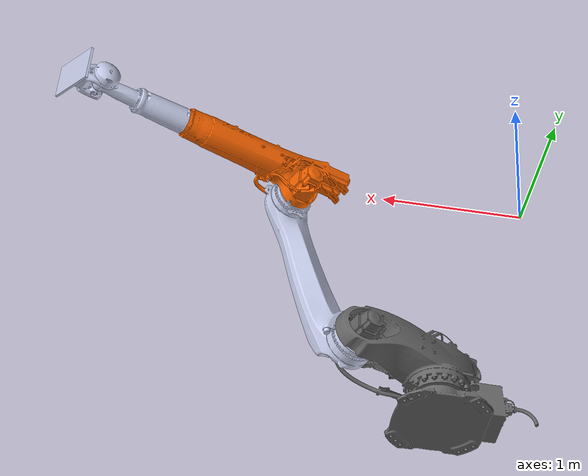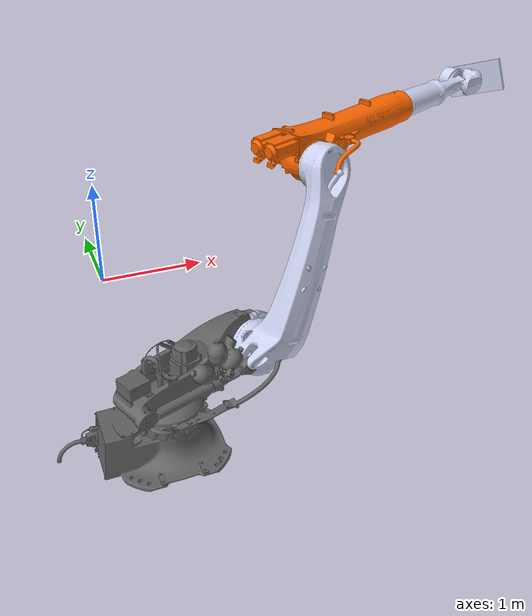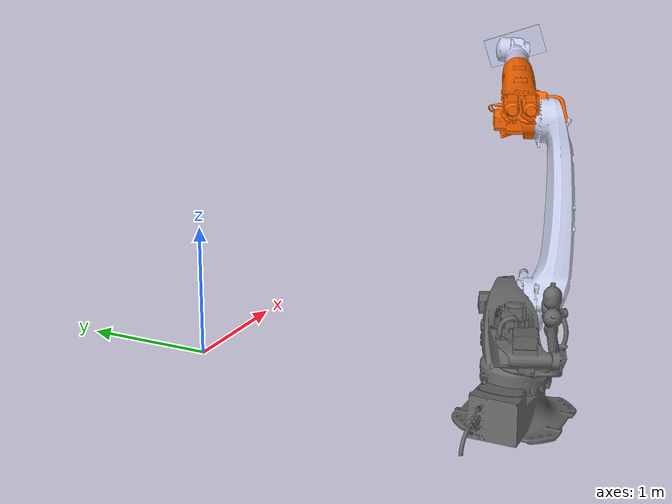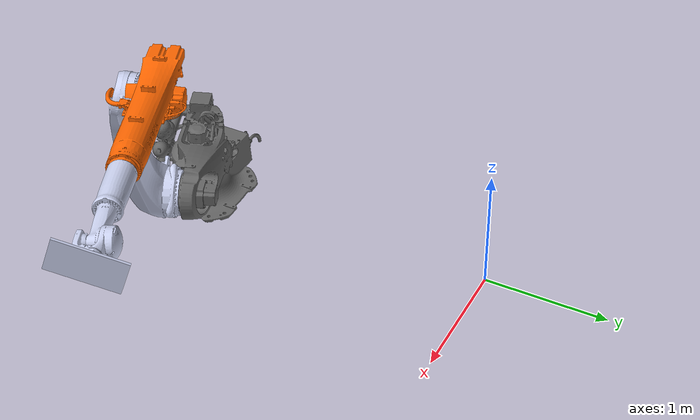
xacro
<?xml version="1.0"?>
<robot xmlns:xacro="http://www.ros.org/wiki/xacro" name="KUKA_Robots">

    <!-- undo these when needed -->

    <!-- Root link -->
    <link name="world"/>

    <!-- Xacro imports -->
    <xacro:include filename="$(find robot_urdf)/urdf/KUKA_robot_macro.xacro" />

    <!-- robot1 -->
    <xacro:KUKA_robot
        name="KUKA_robot"
        prefix="robot1_"
        parent="world">
        <origin xyz="0 -2.5 0" rpy="-1.5708 0 0" />
    </xacro:KUKA_robot>

    <!-- robot2 -->
</robot>

<!-- initial_positions_file="$(arg right_initial_positions_file)" -->
<!-- initial_positions_file="$(arg robot1_initial_positions_file)"> -->

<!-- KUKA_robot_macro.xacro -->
<robot xmlns:xacro="http://www.ros.org/wiki/xacro">

    <xacro:macro name="KUKA_robot" params="name prefix parent *origin">

        <!-- ros2 controls config here -->
        <xacro:include filename="$(find robot_urdf)/config/KUKA_robot.ros2_control.xacro" />
        <xacro:KUKA_robot_ros2_control name="${name}" prefix="${prefix}"/>

        <!-- Gazebo control config goes here -->
        <gazebo>
          <plugin filename="libgz_ros2_control-system.so" name="gz_ros2_control::GazeboSimROS2ControlPlugin">
            <parameters>$(find robot_urdf)/config/KUKA_controller.yaml</parameters>
            <ros>
              <remapping>/controller_manager/robot_description:=/robot_description</remapping>
            </ros>
          </plugin>
        </gazebo>

      <joint name="${prefix}jnt_${parent}_to_base_link" type="fixed">

        <xacro:insert_block name="origin"/>

        <!-- origin xyz="0 0 0" rpy="-1.5708 0 0" / -->

        <parent link="${parent}" />

        <child link="${prefix}base_link" />

      </joint>

      <link name="${prefix}base_link">

        <!-- inertial -->
        <inertial>
          <origin xyz="-0.11981 0.00095475 0.10543" rpy="0 0 0" />
          <mass value="69.419" />
          <inertia
            ixx="1.5959"
            ixy="0.0085722"
            ixz="0.36667"
            iyy="3.5014"
            iyz="-0.0021187"
            izz="4.272" />
        </inertial>

        <!-- visual -->
        <visual>
          <origin xyz="0 0 0" rpy="0 0 0" />
          <geometry>
            <mesh filename="package://robot_urdf/meshes/base_link.STL" />
          </geometry>
          <material name="">
            <color rgba="0.4 0.4 0.4 1" />
          </material>
        </visual>

        <!-- collision -->
        <collision>
          <origin xyz="0 0 0" rpy="0 0 0" />
          <geometry>
            <mesh filename="package://robot_urdf/meshes/base_link.STL" />
          </geometry>
        </collision>

      </link>

      <link name="${prefix}Ax1">
        <inertial>

          <origin xyz="0.21322 0.0074862 0.26077" rpy="0 0 0" />

          <mass value="112.66" />

          <inertia
            ixx="2.9338"
            ixy="-0.80384"
            ixz="-1.3414"
            iyy="9.9259"
            iyz="-0.19044"
            izz="9.4935" />

        </inertial>

        <visual>
          <origin xyz="0 0 0" rpy="0 0 0" />
          <geometry>
            <mesh filename="package://robot_urdf/meshes/Ax1.STL" />
          </geometry>
          <material name="">
            <color rgba="0.4 0.4 0.4 1" />
          </material>
        </visual>

        <collision>
          <origin xyz="0 0 0" rpy="0 0 0" />
          <geometry>
            <mesh filename="package://robot_urdf/meshes/Ax1.STL" />
          </geometry>
        </collision>

      </link>

      <joint name="${prefix}jnt_Base_to_Ax1"
        type="revolute">
        <origin
          xyz="0 -0.21559 0"
          rpy="1.5708 -0.34738 0" />
        <parent
          link="${prefix}base_link" />
        <child
          link="${prefix}Ax1" />
        <axis
          xyz="0 0 1" />
        <limit
          lower="-1.04719755"
          upper="+1.04719755"
          effort="-1"
          velocity="1" />
      </joint>

      <link name="${prefix}Ax2">
        <inertial>
          <origin
            xyz="-0.136832656859279 0.0144078767700652 0.32155414214809"
            rpy="0 0 0" />
          <mass
            value="276.998100922925" />
          <inertia
            ixx="318.852709801833"
            ixy="0.776560972222151"
            ixz="-176.545924815262"
            iyy="440.992384902426"
            iyz="2.83426651703951"
            izz="130.06696817012" />
        </inertial>
        <visual>
          <origin
            xyz="0 0 0"
            rpy="0 0 0" />
          <geometry>
            <mesh
              filename="package://robot_urdf/meshes/Ax2.STL" />
          </geometry>
          <material
            name="">
            <color
              rgba="0.792156862745098 0.819607843137255 0.933333333333333 1" />
          </material>
        </visual>
        <collision>
          <origin
            xyz="0 0 0"
            rpy="0 0 0" />
          <geometry>
            <mesh
              filename="package://robot_urdf/meshes/Ax2.STL" />
          </geometry>
        </collision>
      </link>

      <joint name="${prefix}jnt_Ax1_to_Ax2"
        type="revolute">
        <origin
          xyz="0.73 0 0.32441"
          rpy="0 0.36697 0" />
        <parent
          link="${prefix}Ax1" />
        <child
          link="${prefix}Ax2" />
        <axis
          xyz="0 1 0" />
        <limit
          lower="-1.04719755"
          upper="+1.04719755"
          effort="-1"
          velocity="1" />
      </joint>

      <link name="${prefix}Ax3">
        <inertial>
          <origin
            xyz="0.372143478673027 -4.17118121699422E-05 0.106533438863164"
            rpy="0 0 0" />
          <mass
            value="67.8633341977998" />
          <inertia
            ixx="0.581052848871638"
            ixy="-0.13715563051977"
            ixz="-0.0109016166060049"
            iyy="6.85816958909181"
            iyz="-0.0271578725085325"
            izz="6.89752904665077" />
        </inertial>
        <visual>
          <origin
            xyz="0 0 0"
            rpy="0 0 0" />
          <geometry>
            <mesh
              filename="package://robot_urdf/meshes/Ax3.STL" />
          </geometry>
          <material
            name="">
            <color
              rgba="1 0.4 0 1" />
          </material>
        </visual>
        <collision>
          <origin
            xyz="0 0 0"
            rpy="0 0 0" />
          <geometry>
            <mesh
              filename="package://robot_urdf/meshes/Ax3.STL" />
          </geometry>
        </collision>
      </link>

      <joint name="${prefix}jnt_Ax2_to_Ax3"
        type="revolute">
        <origin
          xyz="0 0 1.35"
          rpy="0 -0.42829 0" />
        <parent
          link="${prefix}Ax2" />
        <child
          link="${prefix}Ax3" />
        <axis
          xyz="0 1 0" />
        <limit
          lower="-1.04719755"
          upper="+1.04719755"
          effort="-1"
          velocity="1" />
      </joint>

      <link name="${prefix}Ax4">
        <inertial>
          <origin
            xyz="0.392856388545806 0.00132042157247414 -4.55709173508012E-07"
            rpy="0 0 0" />
          <mass
            value="17.1103007358543" />
          <inertia
            ixx="0.0705705137136241"
            ixy="-0.010191314944453"
            ixz="8.14143746615133E-06"
            iyy="0.798703820206423"
            iyz="-7.86396144529522E-07"
            izz="0.798093040071735" />
        </inertial>
        <visual>
          <origin
            xyz="0 0 0"
            rpy="0 0 0" />
          <geometry>
            <mesh
              filename="package://robot_urdf/meshes/Ax4.STL" />
          </geometry>
          <material
            name="">
            <color
              rgba="0.792156862745098 0.819607843137255 0.933333333333333 1" />
          </material>
        </visual>
        <collision>
          <origin
            xyz="0 0 0"
            rpy="0 0 0" />
          <geometry>
            <mesh
              filename="package://robot_urdf/meshes/Ax4.STL" />
          </geometry>
        </collision>
      </link>

      <joint name="${prefix}jnt_Ax3_to_Ax4"
        type="revolute">
        <origin
          xyz="0.9909 0 0.115"
          rpy="0.083358 0 0" />
        <parent
          link="${prefix}Ax3" />
        <child
          link="${prefix}Ax4" />
        <axis
          xyz="1 0 0" />
        <limit
          lower="-1.04719755"
          upper="+1.04719755"
          effort="-1"
          velocity="1" />
      </joint>

      <link name="${prefix}Ax5">
        <inertial>
          <origin
            xyz="0.051767116658477 0.0338271406479826 -4.43843200792493E-05"
            rpy="0 0 0" />
          <mass
            value="6.83021133378002" />
          <inertia
            ixx="0.0611665262361527"
            ixy="0.0149901526275177"
            ixz="1.89494897224055E-05"
            iyy="0.054041031435701"
            iyz="3.52407908043246E-05"
            izz="0.08587461873486" />
        </inertial>
        <visual>
          <origin
            xyz="0 0 0"
            rpy="0 0 0" />
          <geometry>
            <mesh
              filename="package://robot_urdf/meshes/Ax5.STL" />
          </geometry>
          <material
            name="">
            <color
              rgba="0.792156862745098 0.819607843137255 0.933333333333333 1" />
          </material>
        </visual>
        <collision>
          <origin
            xyz="0 0 0"
            rpy="0 0 0" />
          <geometry>
            <mesh
              filename="package://robot_urdf/meshes/Ax5.STL" />
          </geometry>
        </collision>
      </link>

      <joint name="${prefix}jnt_Ax4_to_Ax5"
        type="revolute">
        <origin
          xyz="0.8291 0 0"
          rpy="0 0.043548 0" />
        <parent
          link="${prefix}Ax4" />
        <child
          link="${prefix}Ax5" />
        <axis
          xyz="0 1 0" />
        <limit
          lower="-1.04719755"
          upper="+1.04719755"
          effort="-1"
          velocity="1" />
      </joint>

      <link name="${prefix}Ax6">
        <inertial>
          <origin
            xyz="0.075421153011026 -7.40807057847404E-06 5.04801295508894E-05"
            rpy="0 0 0" />
          <mass
            value="0.576833152319335" />
          <inertia
            ixx="0.00137814989301989"
            ixy="6.51907434856228E-08"
            ixz="-2.53894277537053E-07"
            iyy="0.000767002773596282"
            iyz="1.31490592791559E-08"
            izz="0.000764903466159646" />
        </inertial>
        <visual>
          <origin
            xyz="0 0 0"
            rpy="0 0 0" />
          <geometry>
            <mesh
              filename="package://robot_urdf/meshes/Ax6.STL" />
          </geometry>
          <material
            name="">
            <color
              rgba="0.792156862745098 0.819607843137255 0.933333333333333 1" />
          </material>
        </visual>
        <collision>
          <origin
            xyz="0 0 0"
            rpy="0 0 0" />
          <geometry>
            <mesh
              filename="package://robot_urdf/meshes/Ax6.STL" />
          </geometry>
        </collision>
      </link>

      <joint name="${prefix}jnt_Ax5_to_Ax6"
        type="revolute">
        <origin
          xyz="0.1178 0 0"
          rpy="0.051821 0 0" />
        <parent
          link="${prefix}Ax5" />
        <child
          link="${prefix}Ax6" />
        <axis
          xyz="1 0 0" />
        <limit
          lower="-1.04719755"
          upper="+1.04719755"
          effort="-1"
          velocity="1" />
      </joint>

      <link name="${prefix}Tool">
        <inertial>
          <origin
            xyz="0.0043843 -0.0089877 0.10702"
            rpy="0 0 0" />
          <mass
            value="2.5342" />
          <inertia
            ixx="0.052186"
            ixy="-4.7054E-16"
            ixz="-2.4194E-16"
            iyy="0.013124"
            iyz="-1.2094E-15"
            izz="0.065131" />
        </inertial>
        <visual>
          <origin
            xyz="0 0 0"
            rpy="0 0 0" />
          <geometry>
            <mesh
              filename="package://robot_urdf/meshes/Tool.STL" />
          </geometry>
          <material
            name="">
            <color
              rgba="0.79216 0.81961 0.93333 1" />
          </material>
        </visual>
        <collision>
          <origin
            xyz="0 0 0"
            rpy="0 0 0" />
          <geometry>
            <mesh
              filename="package://robot_urdf/meshes/Tool.STL" />
          </geometry>
        </collision>
      </link>

      <joint name="${prefix}FixJnt_Ax6_to_Tool"
        type="fixed">
        <origin
          xyz="0 0.01 0"
          rpy="-1.5708 1.117 -1.5708" />
        <parent
          link="${prefix}Ax6" />
        <child
          link="${prefix}Tool" />
        <axis
          xyz="0 0 1" />
        <limit
          lower="-1.04719755"
          upper="+1.04719755"
          effort="-1"
          velocity="1" />
      </joint>

    </xacro:macro>

</robot>
